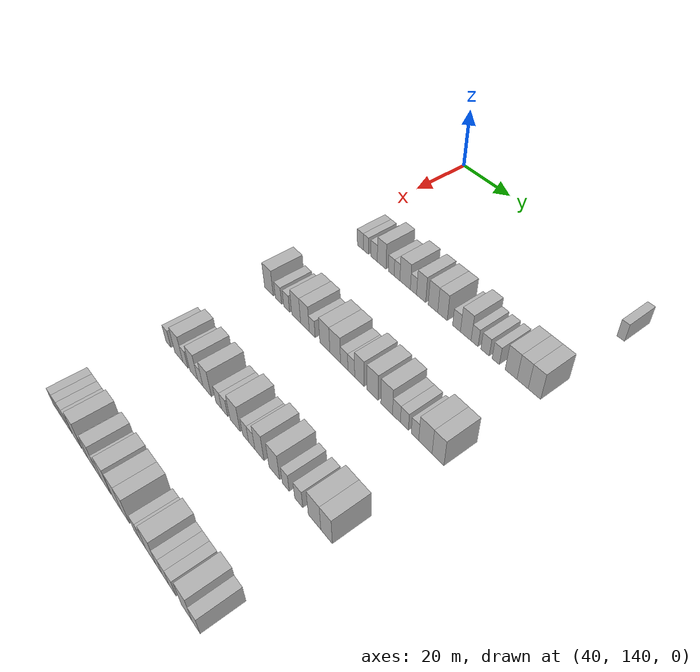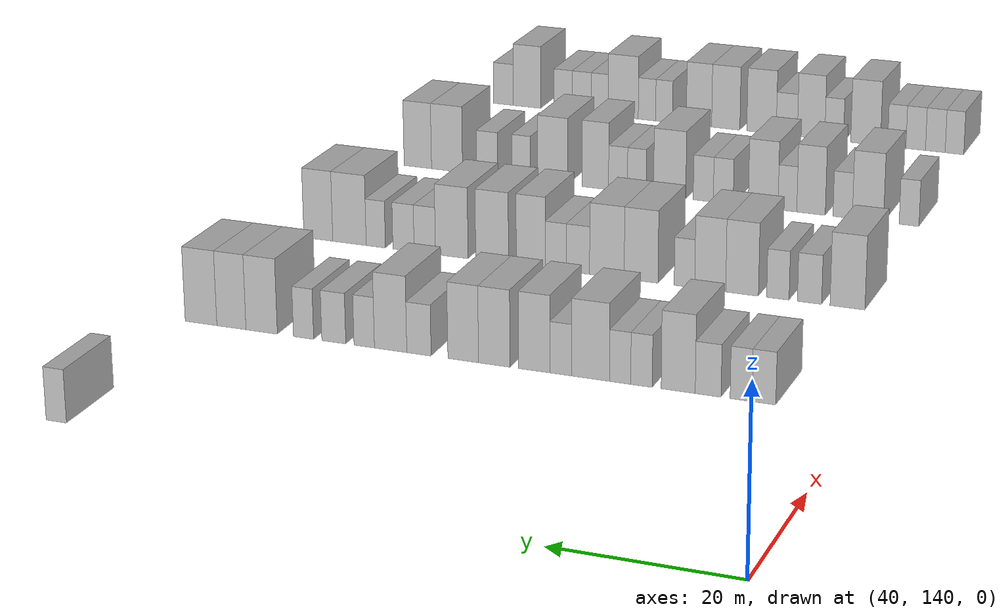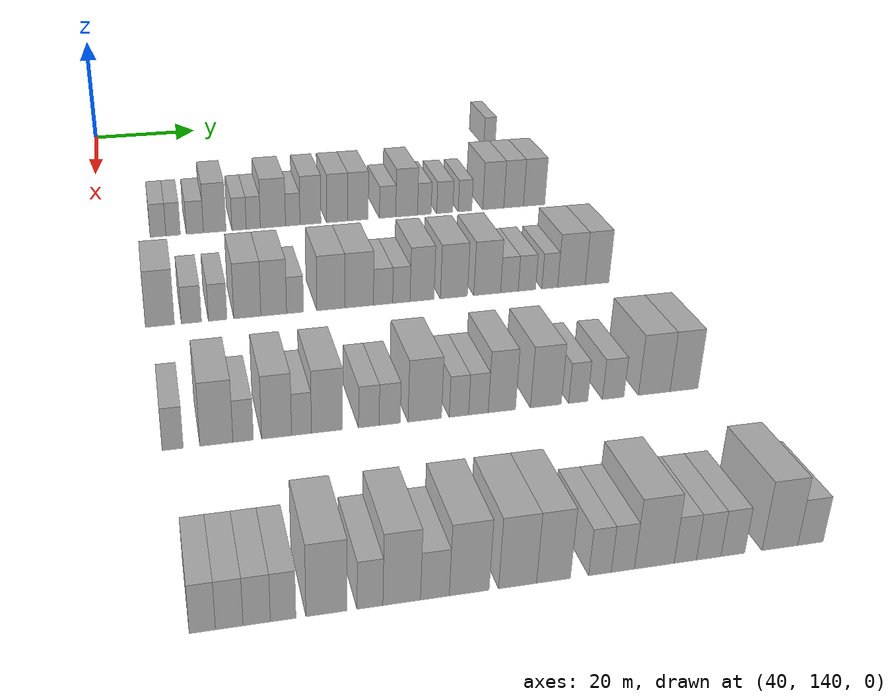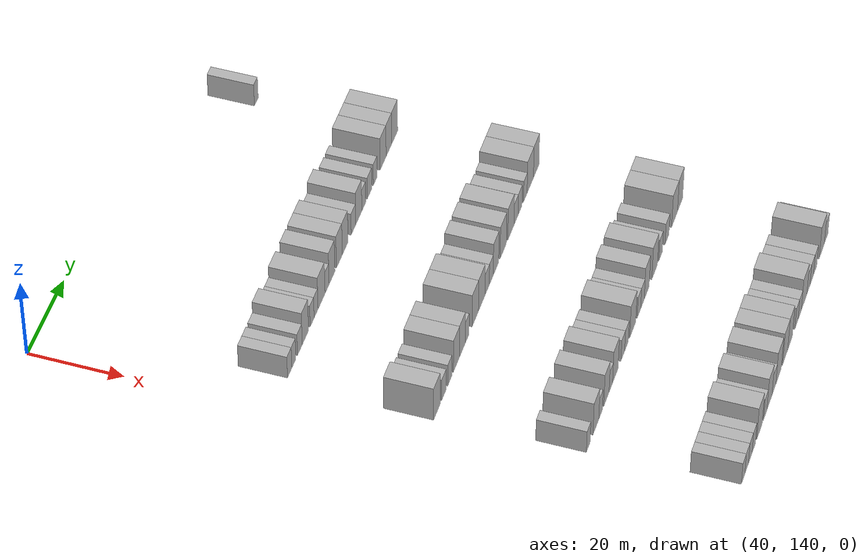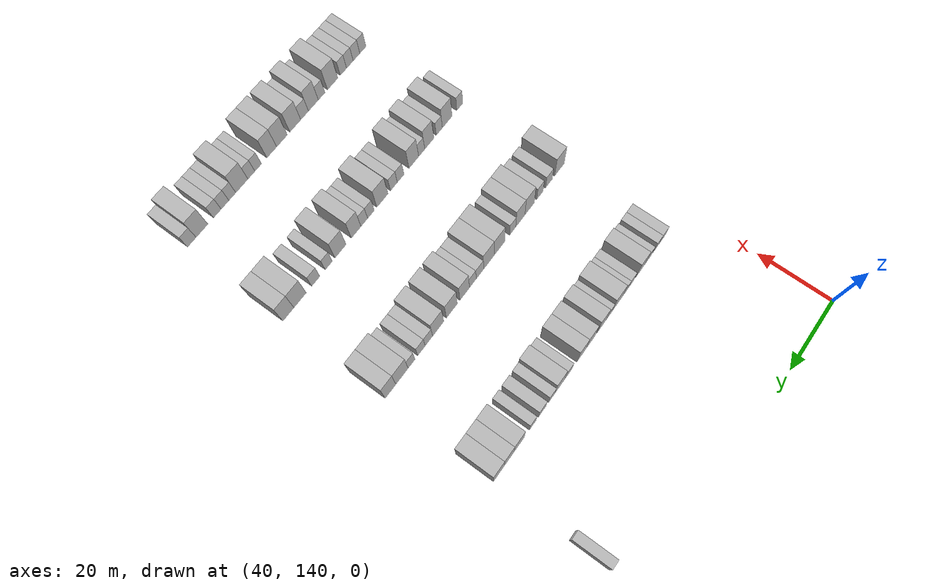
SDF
<sdf version="1.6">
 <world name="default">
  <model name="building_416">
   <static>1</static>
   <pose>55.0000 218.0887 0 0.000000 0.000000 0.000000</pose>
   <link name="link">
    <pose>0 0 3.00 0 0 0</pose>
    <collision name="collision"><geometry><box><size>10.0000 2.4012 6.0000</size></box></geometry></collision>
    <visual name="visual">
     <cast_shadows>0</cast_shadows>
     <geometry><box><size>10.0000 2.4012 6.0000</size></box></geometry>
     <material>
      <script>
       <uri>model://HANNAS_wall/materials/scripts</uri>
       <uri>model://HANNAS_wall/materials/textures</uri>
       <name>vrc/HANNAS_wall</name>
      </script>
     </material>
    </visual>
   </link>
  </model>
  <model name="building_636">
   <static>1</static>
   <pose>85.0000 150.3652 0 0.000000 0.000000 0.000000</pose>
   <link name="link">
    <pose>0 0 3.00 0 0 0</pose>
    <collision name="collision"><geometry><box><size>10.0000 2.6214 6.0000</size></box></geometry></collision>
    <visual name="visual">
     <cast_shadows>0</cast_shadows>
     <geometry><box><size>10.0000 2.6214 6.0000</size></box></geometry>
     <material>
      <script>
       <uri>model://HANNAS_wall/materials/scripts</uri>
       <uri>model://HANNAS_wall/materials/textures</uri>
       <name>vrc/HANNAS_wall</name>
      </script>
     </material>
    </visual>
   </link>
  </model>
  <model name="building_637">
   <static>1</static>
   <pose>85.0000 152.8861 0 0.000000 0.000000 0.000000</pose>
   <link name="link">
    <pose>0 0 3.00 0 0 0</pose>
    <collision name="collision"><geometry><box><size>10.0000 2.4204 6.0000</size></box></geometry></collision>
    <visual name="visual">
     <cast_shadows>0</cast_shadows>
     <geometry><box><size>10.0000 2.4204 6.0000</size></box></geometry>
     <material>
      <script>
       <uri>model://HANNAS_wall/materials/scripts</uri>
       <uri>model://HANNAS_wall/materials/textures</uri>
       <name>vrc/HANNAS_wall</name>
      </script>
     </material>
    </visual>
   </link>
  </model>
  <model name="building_638">
   <static>1</static>
   <pose>85.0000 156.5378 0 0.000000 0.000000 0.000000</pose>
   <link name="link">
    <pose>0 0 3.00 0 0 0</pose>
    <collision name="collision"><geometry><box><size>10.0000 2.8830 6.0000</size></box></geometry></collision>
    <visual name="visual">
     <cast_shadows>0</cast_shadows>
     <geometry><box><size>10.0000 2.8830 6.0000</size></box></geometry>
     <material>
      <script>
       <uri>model://HANNAS_wall/materials/scripts</uri>
       <uri>model://HANNAS_wall/materials/textures</uri>
       <name>vrc/HANNAS_wall</name>
      </script>
     </material>
    </visual>
   </link>
  </model>
  <model name="building_639">
   <static>1</static>
   <pose>85.0000 159.8914 0 0.000000 0.000000 0.000000</pose>
   <link name="link">
    <pose>0 0 4.50 0 0 0</pose>
    <collision name="collision"><geometry><box><size>10.0000 3.8242 9.0000</size></box></geometry></collision>
    <visual name="visual">
     <cast_shadows>0</cast_shadows>
     <geometry><box><size>10.0000 3.8242 9.0000</size></box></geometry>
     <material>
      <script>
       <uri>model://HANNAS_wall/materials/scripts</uri>
       <uri>model://HANNAS_wall/materials/textures</uri>
       <name>vrc/HANNAS_wall</name>
      </script>
     </material>
    </visual>
   </link>
  </model>
  <model name="building_640">
   <static>1</static>
   <pose>85.0000 164.0243 0 0.000000 0.000000 0.000000</pose>
   <link name="link">
    <pose>0 0 3.00 0 0 0</pose>
    <collision name="collision"><geometry><box><size>10.0000 2.4414 6.0000</size></box></geometry></collision>
    <visual name="visual">
     <cast_shadows>0</cast_shadows>
     <geometry><box><size>10.0000 2.4414 6.0000</size></box></geometry>
     <material>
      <script>
       <uri>model://HANNAS_wall/materials/scripts</uri>
       <uri>model://HANNAS_wall/materials/textures</uri>
       <name>vrc/HANNAS_wall</name>
      </script>
     </material>
    </visual>
   </link>
  </model>
  <model name="building_641">
   <static>1</static>
   <pose>85.0000 166.4516 0 0.000000 0.000000 0.000000</pose>
   <link name="link">
    <pose>0 0 3.00 0 0 0</pose>
    <collision name="collision"><geometry><box><size>10.0000 2.4132 6.0000</size></box></geometry></collision>
    <visual name="visual">
     <cast_shadows>0</cast_shadows>
     <geometry><box><size>10.0000 2.4132 6.0000</size></box></geometry>
     <material>
      <script>
       <uri>model://HANNAS_wall/materials/scripts</uri>
       <uri>model://HANNAS_wall/materials/textures</uri>
       <name>vrc/HANNAS_wall</name>
      </script>
     </material>
    </visual>
   </link>
  </model>
  <model name="building_642">
   <static>1</static>
   <pose>85.0000 169.8279 0 0.000000 0.000000 0.000000</pose>
   <link name="link">
    <pose>0 0 4.50 0 0 0</pose>
    <collision name="collision"><geometry><box><size>10.0000 4.3394 9.0000</size></box></geometry></collision>
    <visual name="visual">
     <cast_shadows>0</cast_shadows>
     <geometry><box><size>10.0000 4.3394 9.0000</size></box></geometry>
     <material>
      <script>
       <uri>model://HANNAS_wall/materials/scripts</uri>
       <uri>model://HANNAS_wall/materials/textures</uri>
       <name>vrc/HANNAS_wall</name>
      </script>
     </material>
    </visual>
   </link>
  </model>
  <model name="building_643">
   <static>1</static>
   <pose>85.0000 173.2562 0 0.000000 0.000000 0.000000</pose>
   <link name="link">
    <pose>0 0 3.00 0 0 0</pose>
    <collision name="collision"><geometry><box><size>10.0000 2.5173 6.0000</size></box></geometry></collision>
    <visual name="visual">
     <cast_shadows>0</cast_shadows>
     <geometry><box><size>10.0000 2.5173 6.0000</size></box></geometry>
     <material>
      <script>
       <uri>model://HANNAS_wall/materials/scripts</uri>
       <uri>model://HANNAS_wall/materials/textures</uri>
       <name>vrc/HANNAS_wall</name>
      </script>
     </material>
    </visual>
   </link>
  </model>
  <model name="building_644">
   <static>1</static>
   <pose>85.0000 176.3372 0 0.000000 0.000000 0.000000</pose>
   <link name="link">
    <pose>0 0 4.50 0 0 0</pose>
    <collision name="collision"><geometry><box><size>10.0000 3.6447 9.0000</size></box></geometry></collision>
    <visual name="visual">
     <cast_shadows>0</cast_shadows>
     <geometry><box><size>10.0000 3.6447 9.0000</size></box></geometry>
     <material>
      <script>
       <uri>model://HANNAS_wall/materials/scripts</uri>
       <uri>model://HANNAS_wall/materials/textures</uri>
       <name>vrc/HANNAS_wall</name>
      </script>
     </material>
    </visual>
   </link>
  </model>
  <model name="building_645">
   <static>1</static>
   <pose>85.0000 181.0140 0 0.000000 0.000000 0.000000</pose>
   <link name="link">
    <pose>0 0 4.50 0 0 0</pose>
    <collision name="collision"><geometry><box><size>10.0000 3.7088 9.0000</size></box></geometry></collision>
    <visual name="visual">
     <cast_shadows>0</cast_shadows>
     <geometry><box><size>10.0000 3.7088 9.0000</size></box></geometry>
     <material>
      <script>
       <uri>model://HANNAS_wall/materials/scripts</uri>
       <uri>model://HANNAS_wall/materials/textures</uri>
       <name>vrc/HANNAS_wall</name>
      </script>
     </material>
    </visual>
   </link>
  </model>
  <model name="building_646">
   <static>1</static>
   <pose>85.0000 184.6823 0 0.000000 0.000000 0.000000</pose>
   <link name="link">
    <pose>0 0 4.50 0 0 0</pose>
    <collision name="collision"><geometry><box><size>10.0000 3.6279 9.0000</size></box></geometry></collision>
    <visual name="visual">
     <cast_shadows>0</cast_shadows>
     <geometry><box><size>10.0000 3.6279 9.0000</size></box></geometry>
     <material>
      <script>
       <uri>model://HANNAS_wall/materials/scripts</uri>
       <uri>model://HANNAS_wall/materials/textures</uri>
       <name>vrc/HANNAS_wall</name>
      </script>
     </material>
    </visual>
   </link>
  </model>
  <model name="building_647">
   <static>1</static>
   <pose>85.0000 189.9534 0 0.000000 0.000000 0.000000</pose>
   <link name="link">
    <pose>0 0 3.00 0 0 0</pose>
    <collision name="collision"><geometry><box><size>10.0000 2.9142 6.0000</size></box></geometry></collision>
    <visual name="visual">
     <cast_shadows>0</cast_shadows>
     <geometry><box><size>10.0000 2.9142 6.0000</size></box></geometry>
     <material>
      <script>
       <uri>model://HANNAS_wall/materials/scripts</uri>
       <uri>model://HANNAS_wall/materials/textures</uri>
       <name>vrc/HANNAS_wall</name>
      </script>
     </material>
    </visual>
   </link>
  </model>
  <model name="building_648">
   <static>1</static>
   <pose>85.0000 193.3617 0 0.000000 0.000000 0.000000</pose>
   <link name="link">
    <pose>0 0 4.50 0 0 0</pose>
    <collision name="collision"><geometry><box><size>10.0000 3.9025 9.0000</size></box></geometry></collision>
    <visual name="visual">
     <cast_shadows>0</cast_shadows>
     <geometry><box><size>10.0000 3.9025 9.0000</size></box></geometry>
     <material>
      <script>
       <uri>model://HANNAS_wall/materials/scripts</uri>
       <uri>model://HANNAS_wall/materials/textures</uri>
       <name>vrc/HANNAS_wall</name>
      </script>
     </material>
    </visual>
   </link>
  </model>
  <model name="building_649">
   <static>1</static>
   <pose>85.0000 196.5526 0 0.000000 0.000000 0.000000</pose>
   <link name="link">
    <pose>0 0 3.00 0 0 0</pose>
    <collision name="collision"><geometry><box><size>10.0000 2.4792 6.0000</size></box></geometry></collision>
    <visual name="visual">
     <cast_shadows>0</cast_shadows>
     <geometry><box><size>10.0000 2.4792 6.0000</size></box></geometry>
     <material>
      <script>
       <uri>model://HANNAS_wall/materials/scripts</uri>
       <uri>model://HANNAS_wall/materials/textures</uri>
       <name>vrc/HANNAS_wall</name>
      </script>
     </material>
    </visual>
   </link>
  </model>
  <model name="building_650">
   <static>1</static>
   <pose>85.0000 200.2583 0 0.000000 0.000000 0.000000</pose>
   <link name="link">
    <pose>0 0 3.00 0 0 0</pose>
    <collision name="collision"><geometry><box><size>10.0000 2.9322 6.0000</size></box></geometry></collision>
    <visual name="visual">
     <cast_shadows>0</cast_shadows>
     <geometry><box><size>10.0000 2.9322 6.0000</size></box></geometry>
     <material>
      <script>
       <uri>model://HANNAS_wall/materials/scripts</uri>
       <uri>model://HANNAS_wall/materials/textures</uri>
       <name>vrc/HANNAS_wall</name>
      </script>
     </material>
    </visual>
   </link>
  </model>
  <model name="building_651">
   <static>1</static>
   <pose>85.0000 203.9681 0 0.000000 0.000000 0.000000</pose>
   <link name="link">
    <pose>0 0 3.00 0 0 0</pose>
    <collision name="collision"><geometry><box><size>10.0000 2.4874 6.0000</size></box></geometry></collision>
    <visual name="visual">
     <cast_shadows>0</cast_shadows>
     <geometry><box><size>10.0000 2.4874 6.0000</size></box></geometry>
     <material>
      <script>
       <uri>model://HANNAS_wall/materials/scripts</uri>
       <uri>model://HANNAS_wall/materials/textures</uri>
       <name>vrc/HANNAS_wall</name>
      </script>
     </material>
    </visual>
   </link>
  </model>
  <model name="building_652">
   <static>1</static>
   <pose>85.0000 209.1664 0 0.000000 0.000000 0.000000</pose>
   <link name="link">
    <pose>0 0 4.50 0 0 0</pose>
    <collision name="collision"><geometry><box><size>10.0000 3.9091 9.0000</size></box></geometry></collision>
    <visual name="visual">
     <cast_shadows>0</cast_shadows>
     <geometry><box><size>10.0000 3.9091 9.0000</size></box></geometry>
     <material>
      <script>
       <uri>model://HANNAS_wall/materials/scripts</uri>
       <uri>model://HANNAS_wall/materials/textures</uri>
       <name>vrc/HANNAS_wall</name>
      </script>
     </material>
    </visual>
   </link>
  </model>
  <model name="building_653">
   <static>1</static>
   <pose>85.0000 212.9506 0 0.000000 0.000000 0.000000</pose>
   <link name="link">
    <pose>0 0 4.50 0 0 0</pose>
    <collision name="collision"><geometry><box><size>10.0000 3.6593 9.0000</size></box></geometry></collision>
    <visual name="visual">
     <cast_shadows>0</cast_shadows>
     <geometry><box><size>10.0000 3.6593 9.0000</size></box></geometry>
     <material>
      <script>
       <uri>model://HANNAS_wall/materials/scripts</uri>
       <uri>model://HANNAS_wall/materials/textures</uri>
       <name>vrc/HANNAS_wall</name>
      </script>
     </material>
    </visual>
   </link>
  </model>
  <model name="building_654">
   <static>1</static>
   <pose>85.0000 216.7795 0 0.000000 0.000000 0.000000</pose>
   <link name="link">
    <pose>0 0 4.50 0 0 0</pose>
    <collision name="collision"><geometry><box><size>10.0000 3.9984 9.0000</size></box></geometry></collision>
    <visual name="visual">
     <cast_shadows>0</cast_shadows>
     <geometry><box><size>10.0000 3.9984 9.0000</size></box></geometry>
     <material>
      <script>
       <uri>model://HANNAS_wall/materials/scripts</uri>
       <uri>model://HANNAS_wall/materials/textures</uri>
       <name>vrc/HANNAS_wall</name>
      </script>
     </material>
    </visual>
   </link>
  </model>
  <model name="building_869">
   <static>1</static>
   <pose>115.0000 149.2955 0 0.000000 0.000000 0.000000</pose>
   <link name="link">
    <pose>0 0 4.50 0 0 0</pose>
    <collision name="collision"><geometry><box><size>10.0000 4.1432 9.0000</size></box></geometry></collision>
    <visual name="visual">
     <cast_shadows>0</cast_shadows>
     <geometry><box><size>10.0000 4.1432 9.0000</size></box></geometry>
     <material>
      <script>
       <uri>model://HANNAS_wall/materials/scripts</uri>
       <uri>model://HANNAS_wall/materials/textures</uri>
       <name>vrc/HANNAS_wall</name>
      </script>
     </material>
    </visual>
   </link>
  </model>
  <model name="building_870">
   <static>1</static>
   <pose>115.0000 153.8148 0 0.000000 0.000000 0.000000</pose>
   <link name="link">
    <pose>0 0 3.00 0 0 0</pose>
    <collision name="collision"><geometry><box><size>10.0000 2.8955 6.0000</size></box></geometry></collision>
    <visual name="visual">
     <cast_shadows>0</cast_shadows>
     <geometry><box><size>10.0000 2.8955 6.0000</size></box></geometry>
     <material>
      <script>
       <uri>model://HANNAS_wall/materials/scripts</uri>
       <uri>model://HANNAS_wall/materials/textures</uri>
       <name>vrc/HANNAS_wall</name>
      </script>
     </material>
    </visual>
   </link>
  </model>
  <model name="building_871">
   <static>1</static>
   <pose>115.0000 157.6130 0 0.000000 0.000000 0.000000</pose>
   <link name="link">
    <pose>0 0 3.00 0 0 0</pose>
    <collision name="collision"><geometry><box><size>10.0000 2.7008 6.0000</size></box></geometry></collision>
    <visual name="visual">
     <cast_shadows>0</cast_shadows>
     <geometry><box><size>10.0000 2.7008 6.0000</size></box></geometry>
     <material>
      <script>
       <uri>model://HANNAS_wall/materials/scripts</uri>
       <uri>model://HANNAS_wall/materials/textures</uri>
       <name>vrc/HANNAS_wall</name>
      </script>
     </material>
    </visual>
   </link>
  </model>
  <model name="building_872">
   <static>1</static>
   <pose>115.0000 161.9513 0 0.000000 0.000000 0.000000</pose>
   <link name="link">
    <pose>0 0 4.50 0 0 0</pose>
    <collision name="collision"><geometry><box><size>10.0000 3.9759 9.0000</size></box></geometry></collision>
    <visual name="visual">
     <cast_shadows>0</cast_shadows>
     <geometry><box><size>10.0000 3.9759 9.0000</size></box></geometry>
     <material>
      <script>
       <uri>model://HANNAS_wall/materials/scripts</uri>
       <uri>model://HANNAS_wall/materials/textures</uri>
       <name>vrc/HANNAS_wall</name>
      </script>
     </material>
    </visual>
   </link>
  </model>
  <model name="building_873">
   <static>1</static>
   <pose>115.0000 165.8396 0 0.000000 0.000000 0.000000</pose>
   <link name="link">
    <pose>0 0 4.50 0 0 0</pose>
    <collision name="collision"><geometry><box><size>10.0000 3.8006 9.0000</size></box></geometry></collision>
    <visual name="visual">
     <cast_shadows>0</cast_shadows>
     <geometry><box><size>10.0000 3.8006 9.0000</size></box></geometry>
     <material>
      <script>
       <uri>model://HANNAS_wall/materials/scripts</uri>
       <uri>model://HANNAS_wall/materials/textures</uri>
       <name>vrc/HANNAS_wall</name>
      </script>
     </material>
    </visual>
   </link>
  </model>
  <model name="building_874">
   <static>1</static>
   <pose>115.0000 168.9983 0 0.000000 0.000000 0.000000</pose>
   <link name="link">
    <pose>0 0 3.00 0 0 0</pose>
    <collision name="collision"><geometry><box><size>10.0000 2.5168 6.0000</size></box></geometry></collision>
    <visual name="visual">
     <cast_shadows>0</cast_shadows>
     <geometry><box><size>10.0000 2.5168 6.0000</size></box></geometry>
     <material>
      <script>
       <uri>model://HANNAS_wall/materials/scripts</uri>
       <uri>model://HANNAS_wall/materials/textures</uri>
       <name>vrc/HANNAS_wall</name>
      </script>
     </material>
    </visual>
   </link>
  </model>
  <model name="building_875">
   <static>1</static>
   <pose>115.0000 174.3618 0 0.000000 0.000000 0.000000</pose>
   <link name="link">
    <pose>0 0 4.50 0 0 0</pose>
    <collision name="collision"><geometry><box><size>10.0000 4.2102 9.0000</size></box></geometry></collision>
    <visual name="visual">
     <cast_shadows>0</cast_shadows>
     <geometry><box><size>10.0000 4.2102 9.0000</size></box></geometry>
     <material>
      <script>
       <uri>model://HANNAS_wall/materials/scripts</uri>
       <uri>model://HANNAS_wall/materials/textures</uri>
       <name>vrc/HANNAS_wall</name>
      </script>
     </material>
    </visual>
   </link>
  </model>
  <model name="building_876">
   <static>1</static>
   <pose>115.0000 178.6409 0 0.000000 0.000000 0.000000</pose>
   <link name="link">
    <pose>0 0 4.50 0 0 0</pose>
    <collision name="collision"><geometry><box><size>10.0000 4.3481 9.0000</size></box></geometry></collision>
    <visual name="visual">
     <cast_shadows>0</cast_shadows>
     <geometry><box><size>10.0000 4.3481 9.0000</size></box></geometry>
     <material>
      <script>
       <uri>model://HANNAS_wall/materials/scripts</uri>
       <uri>model://HANNAS_wall/materials/textures</uri>
       <name>vrc/HANNAS_wall</name>
      </script>
     </material>
    </visual>
   </link>
  </model>
  <model name="building_877">
   <static>1</static>
   <pose>115.0000 182.2882 0 0.000000 0.000000 0.000000</pose>
   <link name="link">
    <pose>0 0 3.00 0 0 0</pose>
    <collision name="collision"><geometry><box><size>10.0000 2.9465 6.0000</size></box></geometry></collision>
    <visual name="visual">
     <cast_shadows>0</cast_shadows>
     <geometry><box><size>10.0000 2.9465 6.0000</size></box></geometry>
     <material>
      <script>
       <uri>model://HANNAS_wall/materials/scripts</uri>
       <uri>model://HANNAS_wall/materials/textures</uri>
       <name>vrc/HANNAS_wall</name>
      </script>
     </material>
    </visual>
   </link>
  </model>
  <model name="building_878">
   <static>1</static>
   <pose>115.0000 185.0951 0 0.000000 0.000000 0.000000</pose>
   <link name="link">
    <pose>0 0 3.00 0 0 0</pose>
    <collision name="collision"><geometry><box><size>10.0000 2.6672 6.0000</size></box></geometry></collision>
    <visual name="visual">
     <cast_shadows>0</cast_shadows>
     <geometry><box><size>10.0000 2.6672 6.0000</size></box></geometry>
     <material>
      <script>
       <uri>model://HANNAS_wall/materials/scripts</uri>
       <uri>model://HANNAS_wall/materials/textures</uri>
       <name>vrc/HANNAS_wall</name>
      </script>
     </material>
    </visual>
   </link>
  </model>
  <model name="building_879">
   <static>1</static>
   <pose>115.0000 188.2824 0 0.000000 0.000000 0.000000</pose>
   <link name="link">
    <pose>0 0 4.50 0 0 0</pose>
    <collision name="collision"><geometry><box><size>10.0000 3.7073 9.0000</size></box></geometry></collision>
    <visual name="visual">
     <cast_shadows>0</cast_shadows>
     <geometry><box><size>10.0000 3.7073 9.0000</size></box></geometry>
     <material>
      <script>
       <uri>model://HANNAS_wall/materials/scripts</uri>
       <uri>model://HANNAS_wall/materials/textures</uri>
       <name>vrc/HANNAS_wall</name>
      </script>
     </material>
    </visual>
   </link>
  </model>
  <model name="building_880">
   <static>1</static>
   <pose>115.0000 193.2571 0 0.000000 0.000000 0.000000</pose>
   <link name="link">
    <pose>0 0 4.50 0 0 0</pose>
    <collision name="collision"><geometry><box><size>10.0000 4.2421 9.0000</size></box></geometry></collision>
    <visual name="visual">
     <cast_shadows>0</cast_shadows>
     <geometry><box><size>10.0000 4.2421 9.0000</size></box></geometry>
     <material>
      <script>
       <uri>model://HANNAS_wall/materials/scripts</uri>
       <uri>model://HANNAS_wall/materials/textures</uri>
       <name>vrc/HANNAS_wall</name>
      </script>
     </material>
    </visual>
   </link>
  </model>
  <model name="building_881">
   <static>1</static>
   <pose>115.0000 198.5033 0 0.000000 0.000000 0.000000</pose>
   <link name="link">
    <pose>0 0 4.50 0 0 0</pose>
    <collision name="collision"><geometry><box><size>10.0000 4.2504 9.0000</size></box></geometry></collision>
    <visual name="visual">
     <cast_shadows>0</cast_shadows>
     <geometry><box><size>10.0000 4.2504 9.0000</size></box></geometry>
     <material>
      <script>
       <uri>model://HANNAS_wall/materials/scripts</uri>
       <uri>model://HANNAS_wall/materials/textures</uri>
       <name>vrc/HANNAS_wall</name>
      </script>
     </material>
    </visual>
   </link>
  </model>
  <model name="building_882">
   <static>1</static>
   <pose>115.0000 202.0309 0 0.000000 0.000000 0.000000</pose>
   <link name="link">
    <pose>0 0 3.00 0 0 0</pose>
    <collision name="collision"><geometry><box><size>10.0000 2.8048 6.0000</size></box></geometry></collision>
    <visual name="visual">
     <cast_shadows>0</cast_shadows>
     <geometry><box><size>10.0000 2.8048 6.0000</size></box></geometry>
     <material>
      <script>
       <uri>model://HANNAS_wall/materials/scripts</uri>
       <uri>model://HANNAS_wall/materials/textures</uri>
       <name>vrc/HANNAS_wall</name>
      </script>
     </material>
    </visual>
   </link>
  </model>
  <model name="building_883">
   <static>1</static>
   <pose>115.0000 204.8337 0 0.000000 0.000000 0.000000</pose>
   <link name="link">
    <pose>0 0 3.00 0 0 0</pose>
    <collision name="collision"><geometry><box><size>10.0000 2.8008 6.0000</size></box></geometry></collision>
    <visual name="visual">
     <cast_shadows>0</cast_shadows>
     <geometry><box><size>10.0000 2.8008 6.0000</size></box></geometry>
     <material>
      <script>
       <uri>model://HANNAS_wall/materials/scripts</uri>
       <uri>model://HANNAS_wall/materials/textures</uri>
       <name>vrc/HANNAS_wall</name>
      </script>
     </material>
    </visual>
   </link>
  </model>
  <model name="building_884">
   <static>1</static>
   <pose>115.0000 208.5096 0 0.000000 0.000000 0.000000</pose>
   <link name="link">
    <pose>0 0 3.00 0 0 0</pose>
    <collision name="collision"><geometry><box><size>10.0000 2.5510 6.0000</size></box></geometry></collision>
    <visual name="visual">
     <cast_shadows>0</cast_shadows>
     <geometry><box><size>10.0000 2.5510 6.0000</size></box></geometry>
     <material>
      <script>
       <uri>model://HANNAS_wall/materials/scripts</uri>
       <uri>model://HANNAS_wall/materials/textures</uri>
       <name>vrc/HANNAS_wall</name>
      </script>
     </material>
    </visual>
   </link>
  </model>
  <model name="building_885">
   <static>1</static>
   <pose>115.0000 212.0242 0 0.000000 0.000000 0.000000</pose>
   <link name="link">
    <pose>0 0 4.50 0 0 0</pose>
    <collision name="collision"><geometry><box><size>10.0000 4.4784 9.0000</size></box></geometry></collision>
    <visual name="visual">
     <cast_shadows>0</cast_shadows>
     <geometry><box><size>10.0000 4.4784 9.0000</size></box></geometry>
     <material>
      <script>
       <uri>model://HANNAS_wall/materials/scripts</uri>
       <uri>model://HANNAS_wall/materials/textures</uri>
       <name>vrc/HANNAS_wall</name>
      </script>
     </material>
    </visual>
   </link>
  </model>
  <model name="building_886">
   <static>1</static>
   <pose>115.0000 216.2090 0 0.000000 0.000000 0.000000</pose>
   <link name="link">
    <pose>0 0 4.50 0 0 0</pose>
    <collision name="collision"><geometry><box><size>10.0000 3.8912 9.0000</size></box></geometry></collision>
    <visual name="visual">
     <cast_shadows>0</cast_shadows>
     <geometry><box><size>10.0000 3.8912 9.0000</size></box></geometry>
     <material>
      <script>
       <uri>model://HANNAS_wall/materials/scripts</uri>
       <uri>model://HANNAS_wall/materials/textures</uri>
       <name>vrc/HANNAS_wall</name>
      </script>
     </material>
    </visual>
   </link>
  </model>
  <model name="building_1107">
   <static>1</static>
   <pose>145.0000 149.4284 0 0.000000 0.000000 0.000000</pose>
   <link name="link">
    <pose>0 0 3.00 0 0 0</pose>
    <collision name="collision"><geometry><box><size>10.0000 2.5255 6.0000</size></box></geometry></collision>
    <visual name="visual">
     <cast_shadows>0</cast_shadows>
     <geometry><box><size>10.0000 2.5255 6.0000</size></box></geometry>
     <material>
      <script>
       <uri>model://HANNAS_wall/materials/scripts</uri>
       <uri>model://HANNAS_wall/materials/textures</uri>
       <name>vrc/HANNAS_wall</name>
      </script>
     </material>
    </visual>
   </link>
  </model>
  <model name="building_1108">
   <static>1</static>
   <pose>145.0000 154.6952 0 0.000000 0.000000 0.000000</pose>
   <link name="link">
    <pose>0 0 4.50 0 0 0</pose>
    <collision name="collision"><geometry><box><size>10.0000 4.0081 9.0000</size></box></geometry></collision>
    <visual name="visual">
     <cast_shadows>0</cast_shadows>
     <geometry><box><size>10.0000 4.0081 9.0000</size></box></geometry>
     <material>
      <script>
       <uri>model://HANNAS_wall/materials/scripts</uri>
       <uri>model://HANNAS_wall/materials/textures</uri>
       <name>vrc/HANNAS_wall</name>
      </script>
     </material>
    </visual>
   </link>
  </model>
  <model name="building_1109">
   <static>1</static>
   <pose>145.0000 157.9539 0 0.000000 0.000000 0.000000</pose>
   <link name="link">
    <pose>0 0 3.00 0 0 0</pose>
    <collision name="collision"><geometry><box><size>10.0000 2.5095 6.0000</size></box></geometry></collision>
    <visual name="visual">
     <cast_shadows>0</cast_shadows>
     <geometry><box><size>10.0000 2.5095 6.0000</size></box></geometry>
     <material>
      <script>
       <uri>model://HANNAS_wall/materials/scripts</uri>
       <uri>model://HANNAS_wall/materials/textures</uri>
       <name>vrc/HANNAS_wall</name>
      </script>
     </material>
    </visual>
   </link>
  </model>
  <model name="building_1110">
   <static>1</static>
   <pose>145.0000 162.0639 0 0.000000 0.000000 0.000000</pose>
   <link name="link">
    <pose>0 0 4.50 0 0 0</pose>
    <collision name="collision"><geometry><box><size>10.0000 3.7105 9.0000</size></box></geometry></collision>
    <visual name="visual">
     <cast_shadows>0</cast_shadows>
     <geometry><box><size>10.0000 3.7105 9.0000</size></box></geometry>
     <material>
      <script>
       <uri>model://HANNAS_wall/materials/scripts</uri>
       <uri>model://HANNAS_wall/materials/textures</uri>
       <name>vrc/HANNAS_wall</name>
      </script>
     </material>
    </visual>
   </link>
  </model>
  <model name="building_1111">
   <static>1</static>
   <pose>145.0000 165.1499 0 0.000000 0.000000 0.000000</pose>
   <link name="link">
    <pose>0 0 3.00 0 0 0</pose>
    <collision name="collision"><geometry><box><size>10.0000 2.4614 6.0000</size></box></geometry></collision>
    <visual name="visual">
     <cast_shadows>0</cast_shadows>
     <geometry><box><size>10.0000 2.4614 6.0000</size></box></geometry>
     <material>
      <script>
       <uri>model://HANNAS_wall/materials/scripts</uri>
       <uri>model://HANNAS_wall/materials/textures</uri>
       <name>vrc/HANNAS_wall</name>
      </script>
     </material>
    </visual>
   </link>
  </model>
  <model name="building_1112">
   <static>1</static>
   <pose>145.0000 168.3383 0 0.000000 0.000000 0.000000</pose>
   <link name="link">
    <pose>0 0 4.50 0 0 0</pose>
    <collision name="collision"><geometry><box><size>10.0000 3.9153 9.0000</size></box></geometry></collision>
    <visual name="visual">
     <cast_shadows>0</cast_shadows>
     <geometry><box><size>10.0000 3.9153 9.0000</size></box></geometry>
     <material>
      <script>
       <uri>model://HANNAS_wall/materials/scripts</uri>
       <uri>model://HANNAS_wall/materials/textures</uri>
       <name>vrc/HANNAS_wall</name>
      </script>
     </material>
    </visual>
   </link>
  </model>
  <model name="building_1113">
   <static>1</static>
   <pose>145.0000 173.6154 0 0.000000 0.000000 0.000000</pose>
   <link name="link">
    <pose>0 0 3.00 0 0 0</pose>
    <collision name="collision"><geometry><box><size>10.0000 2.6389 6.0000</size></box></geometry></collision>
    <visual name="visual">
     <cast_shadows>0</cast_shadows>
     <geometry><box><size>10.0000 2.6389 6.0000</size></box></geometry>
     <material>
      <script>
       <uri>model://HANNAS_wall/materials/scripts</uri>
       <uri>model://HANNAS_wall/materials/textures</uri>
       <name>vrc/HANNAS_wall</name>
      </script>
     </material>
    </visual>
   </link>
  </model>
  <model name="building_1114">
   <static>1</static>
   <pose>145.0000 176.2805 0 0.000000 0.000000 0.000000</pose>
   <link name="link">
    <pose>0 0 3.00 0 0 0</pose>
    <collision name="collision"><geometry><box><size>10.0000 2.6915 6.0000</size></box></geometry></collision>
    <visual name="visual">
     <cast_shadows>0</cast_shadows>
     <geometry><box><size>10.0000 2.6915 6.0000</size></box></geometry>
     <material>
      <script>
       <uri>model://HANNAS_wall/materials/scripts</uri>
       <uri>model://HANNAS_wall/materials/textures</uri>
       <name>vrc/HANNAS_wall</name>
      </script>
     </material>
    </visual>
   </link>
  </model>
  <model name="building_1115">
   <static>1</static>
   <pose>145.0000 180.7933 0 0.000000 0.000000 0.000000</pose>
   <link name="link">
    <pose>0 0 4.50 0 0 0</pose>
    <collision name="collision"><geometry><box><size>10.0000 4.3341 9.0000</size></box></geometry></collision>
    <visual name="visual">
     <cast_shadows>0</cast_shadows>
     <geometry><box><size>10.0000 4.3341 9.0000</size></box></geometry>
     <material>
      <script>
       <uri>model://HANNAS_wall/materials/scripts</uri>
       <uri>model://HANNAS_wall/materials/textures</uri>
       <name>vrc/HANNAS_wall</name>
      </script>
     </material>
    </visual>
   </link>
  </model>
  <model name="building_1116">
   <static>1</static>
   <pose>145.0000 185.2317 0 0.000000 0.000000 0.000000</pose>
   <link name="link">
    <pose>0 0 3.00 0 0 0</pose>
    <collision name="collision"><geometry><box><size>10.0000 2.5426 6.0000</size></box></geometry></collision>
    <visual name="visual">
     <cast_shadows>0</cast_shadows>
     <geometry><box><size>10.0000 2.5426 6.0000</size></box></geometry>
     <material>
      <script>
       <uri>model://HANNAS_wall/materials/scripts</uri>
       <uri>model://HANNAS_wall/materials/textures</uri>
       <name>vrc/HANNAS_wall</name>
      </script>
     </material>
    </visual>
   </link>
  </model>
  <model name="building_1117">
   <static>1</static>
   <pose>145.0000 187.7937 0 0.000000 0.000000 0.000000</pose>
   <link name="link">
    <pose>0 0 3.00 0 0 0</pose>
    <collision name="collision"><geometry><box><size>10.0000 2.5814 6.0000</size></box></geometry></collision>
    <visual name="visual">
     <cast_shadows>0</cast_shadows>
     <geometry><box><size>10.0000 2.5814 6.0000</size></box></geometry>
     <material>
      <script>
       <uri>model://HANNAS_wall/materials/scripts</uri>
       <uri>model://HANNAS_wall/materials/textures</uri>
       <name>vrc/HANNAS_wall</name>
      </script>
     </material>
    </visual>
   </link>
  </model>
  <model name="building_1118">
   <static>1</static>
   <pose>145.0000 190.8975 0 0.000000 0.000000 0.000000</pose>
   <link name="link">
    <pose>0 0 4.50 0 0 0</pose>
    <collision name="collision"><geometry><box><size>10.0000 3.6263 9.0000</size></box></geometry></collision>
    <visual name="visual">
     <cast_shadows>0</cast_shadows>
     <geometry><box><size>10.0000 3.6263 9.0000</size></box></geometry>
     <material>
      <script>
       <uri>model://HANNAS_wall/materials/scripts</uri>
       <uri>model://HANNAS_wall/materials/textures</uri>
       <name>vrc/HANNAS_wall</name>
      </script>
     </material>
    </visual>
   </link>
  </model>
  <model name="building_1119">
   <static>1</static>
   <pose>145.0000 196.7833 0 0.000000 0.000000 0.000000</pose>
   <link name="link">
    <pose>0 0 4.50 0 0 0</pose>
    <collision name="collision"><geometry><box><size>10.0000 4.1453 9.0000</size></box></geometry></collision>
    <visual name="visual">
     <cast_shadows>0</cast_shadows>
     <geometry><box><size>10.0000 4.1453 9.0000</size></box></geometry>
     <material>
      <script>
       <uri>model://HANNAS_wall/materials/scripts</uri>
       <uri>model://HANNAS_wall/materials/textures</uri>
       <name>vrc/HANNAS_wall</name>
      </script>
     </material>
    </visual>
   </link>
  </model>
  <model name="building_1120">
   <static>1</static>
   <pose>145.0000 201.1593 0 0.000000 0.000000 0.000000</pose>
   <link name="link">
    <pose>0 0 3.00 0 0 0</pose>
    <collision name="collision"><geometry><box><size>10.0000 2.6068 6.0000</size></box></geometry></collision>
    <visual name="visual">
     <cast_shadows>0</cast_shadows>
     <geometry><box><size>10.0000 2.6068 6.0000</size></box></geometry>
     <material>
      <script>
       <uri>model://HANNAS_wall/materials/scripts</uri>
       <uri>model://HANNAS_wall/materials/textures</uri>
       <name>vrc/HANNAS_wall</name>
      </script>
     </material>
    </visual>
   </link>
  </model>
  <model name="building_1121">
   <static>1</static>
   <pose>145.0000 205.9482 0 0.000000 0.000000 0.000000</pose>
   <link name="link">
    <pose>0 0 3.00 0 0 0</pose>
    <collision name="collision"><geometry><box><size>10.0000 2.9710 6.0000</size></box></geometry></collision>
    <visual name="visual">
     <cast_shadows>0</cast_shadows>
     <geometry><box><size>10.0000 2.9710 6.0000</size></box></geometry>
     <material>
      <script>
       <uri>model://HANNAS_wall/materials/scripts</uri>
       <uri>model://HANNAS_wall/materials/textures</uri>
       <name>vrc/HANNAS_wall</name>
      </script>
     </material>
    </visual>
   </link>
  </model>
  <model name="building_1122">
   <static>1</static>
   <pose>145.0000 211.6418 0 0.000000 0.000000 0.000000</pose>
   <link name="link">
    <pose>0 0 4.50 0 0 0</pose>
    <collision name="collision"><geometry><box><size>10.0000 4.4162 9.0000</size></box></geometry></collision>
    <visual name="visual">
     <cast_shadows>0</cast_shadows>
     <geometry><box><size>10.0000 4.4162 9.0000</size></box></geometry>
     <material>
      <script>
       <uri>model://HANNAS_wall/materials/scripts</uri>
       <uri>model://HANNAS_wall/materials/textures</uri>
       <name>vrc/HANNAS_wall</name>
      </script>
     </material>
    </visual>
   </link>
  </model>
  <model name="building_1123">
   <static>1</static>
   <pose>145.0000 215.8121 0 0.000000 0.000000 0.000000</pose>
   <link name="link">
    <pose>0 0 4.50 0 0 0</pose>
    <collision name="collision"><geometry><box><size>10.0000 3.9244 9.0000</size></box></geometry></collision>
    <visual name="visual">
     <cast_shadows>0</cast_shadows>
     <geometry><box><size>10.0000 3.9244 9.0000</size></box></geometry>
     <material>
      <script>
       <uri>model://HANNAS_wall/materials/scripts</uri>
       <uri>model://HANNAS_wall/materials/textures</uri>
       <name>vrc/HANNAS_wall</name>
      </script>
     </material>
    </visual>
   </link>
  </model>
  <model name="building_1337">
   <static>1</static>
   <pose>175.0000 150.5876 0 0.000000 0.000000 0.000000</pose>
   <link name="link">
    <pose>0 0 3.00 0 0 0</pose>
    <collision name="collision"><geometry><box><size>10.0000 2.5349 6.0000</size></box></geometry></collision>
    <visual name="visual">
     <cast_shadows>0</cast_shadows>
     <geometry><box><size>10.0000 2.5349 6.0000</size></box></geometry>
     <material>
      <script>
       <uri>model://HANNAS_wall/materials/scripts</uri>
       <uri>model://HANNAS_wall/materials/textures</uri>
       <name>vrc/HANNAS_wall</name>
      </script>
     </material>
    </visual>
   </link>
  </model>
  <model name="building_1338">
   <static>1</static>
   <pose>175.0000 153.2038 0 0.000000 0.000000 0.000000</pose>
   <link name="link">
    <pose>0 0 3.00 0 0 0</pose>
    <collision name="collision"><geometry><box><size>10.0000 2.6975 6.0000</size></box></geometry></collision>
    <visual name="visual">
     <cast_shadows>0</cast_shadows>
     <geometry><box><size>10.0000 2.6975 6.0000</size></box></geometry>
     <material>
      <script>
       <uri>model://HANNAS_wall/materials/scripts</uri>
       <uri>model://HANNAS_wall/materials/textures</uri>
       <name>vrc/HANNAS_wall</name>
      </script>
     </material>
    </visual>
   </link>
  </model>
  <model name="building_1339">
   <static>1</static>
   <pose>175.0000 155.8983 0 0.000000 0.000000 0.000000</pose>
   <link name="link">
    <pose>0 0 3.00 0 0 0</pose>
    <collision name="collision"><geometry><box><size>10.0000 2.6916 6.0000</size></box></geometry></collision>
    <visual name="visual">
     <cast_shadows>0</cast_shadows>
     <geometry><box><size>10.0000 2.6916 6.0000</size></box></geometry>
     <material>
      <script>
       <uri>model://HANNAS_wall/materials/scripts</uri>
       <uri>model://HANNAS_wall/materials/textures</uri>
       <name>vrc/HANNAS_wall</name>
      </script>
     </material>
    </visual>
   </link>
  </model>
  <model name="building_1340">
   <static>1</static>
   <pose>175.0000 158.5088 0 0.000000 0.000000 0.000000</pose>
   <link name="link">
    <pose>0 0 3.00 0 0 0</pose>
    <collision name="collision"><geometry><box><size>10.0000 2.5294 6.0000</size></box></geometry></collision>
    <visual name="visual">
     <cast_shadows>0</cast_shadows>
     <geometry><box><size>10.0000 2.5294 6.0000</size></box></geometry>
     <material>
      <script>
       <uri>model://HANNAS_wall/materials/scripts</uri>
       <uri>model://HANNAS_wall/materials/textures</uri>
       <name>vrc/HANNAS_wall</name>
      </script>
     </material>
    </visual>
   </link>
  </model>
  <model name="building_1341">
   <static>1</static>
   <pose>175.0000 162.8446 0 0.000000 0.000000 0.000000</pose>
   <link name="link">
    <pose>0 0 4.50 0 0 0</pose>
    <collision name="collision"><geometry><box><size>10.0000 4.1423 9.0000</size></box></geometry></collision>
    <visual name="visual">
     <cast_shadows>0</cast_shadows>
     <geometry><box><size>10.0000 4.1423 9.0000</size></box></geometry>
     <material>
      <script>
       <uri>model://HANNAS_wall/materials/scripts</uri>
       <uri>model://HANNAS_wall/materials/textures</uri>
       <name>vrc/HANNAS_wall</name>
      </script>
     </material>
    </visual>
   </link>
  </model>
  <model name="building_1342">
   <static>1</static>
   <pose>175.0000 167.2312 0 0.000000 0.000000 0.000000</pose>
   <link name="link">
    <pose>0 0 3.00 0 0 0</pose>
    <collision name="collision"><geometry><box><size>10.0000 2.6311 6.0000</size></box></geometry></collision>
    <visual name="visual">
     <cast_shadows>0</cast_shadows>
     <geometry><box><size>10.0000 2.6311 6.0000</size></box></geometry>
     <material>
      <script>
       <uri>model://HANNAS_wall/materials/scripts</uri>
       <uri>model://HANNAS_wall/materials/textures</uri>
       <name>vrc/HANNAS_wall</name>
      </script>
     </material>
    </visual>
   </link>
  </model>
  <model name="building_1343">
   <static>1</static>
   <pose>175.0000 170.4815 0 0.000000 0.000000 0.000000</pose>
   <link name="link">
    <pose>0 0 4.50 0 0 0</pose>
    <collision name="collision"><geometry><box><size>10.0000 3.8695 9.0000</size></box></geometry></collision>
    <visual name="visual">
     <cast_shadows>0</cast_shadows>
     <geometry><box><size>10.0000 3.8695 9.0000</size></box></geometry>
     <material>
      <script>
       <uri>model://HANNAS_wall/materials/scripts</uri>
       <uri>model://HANNAS_wall/materials/textures</uri>
       <name>vrc/HANNAS_wall</name>
      </script>
     </material>
    </visual>
   </link>
  </model>
  <model name="building_1344">
   <static>1</static>
   <pose>175.0000 173.9149 0 0.000000 0.000000 0.000000</pose>
   <link name="link">
    <pose>0 0 3.00 0 0 0</pose>
    <collision name="collision"><geometry><box><size>10.0000 2.9973 6.0000</size></box></geometry></collision>
    <visual name="visual">
     <cast_shadows>0</cast_shadows>
     <geometry><box><size>10.0000 2.9973 6.0000</size></box></geometry>
     <material>
      <script>
       <uri>model://HANNAS_wall/materials/scripts</uri>
       <uri>model://HANNAS_wall/materials/textures</uri>
       <name>vrc/HANNAS_wall</name>
      </script>
     </material>
    </visual>
   </link>
  </model>
  <model name="building_1345">
   <static>1</static>
   <pose>175.0000 177.5120 0 0.000000 0.000000 0.000000</pose>
   <link name="link">
    <pose>0 0 4.50 0 0 0</pose>
    <collision name="collision"><geometry><box><size>10.0000 4.1969 9.0000</size></box></geometry></collision>
    <visual name="visual">
     <cast_shadows>0</cast_shadows>
     <geometry><box><size>10.0000 4.1969 9.0000</size></box></geometry>
     <material>
      <script>
       <uri>model://HANNAS_wall/materials/scripts</uri>
       <uri>model://HANNAS_wall/materials/textures</uri>
       <name>vrc/HANNAS_wall</name>
      </script>
     </material>
    </visual>
   </link>
  </model>
  <model name="building_1346">
   <static>1</static>
   <pose>175.0000 182.6417 0 0.000000 0.000000 0.000000</pose>
   <link name="link">
    <pose>0 0 4.50 0 0 0</pose>
    <collision name="collision"><geometry><box><size>10.0000 4.0625 9.0000</size></box></geometry></collision>
    <visual name="visual">
     <cast_shadows>0</cast_shadows>
     <geometry><box><size>10.0000 4.0625 9.0000</size></box></geometry>
     <material>
      <script>
       <uri>model://HANNAS_wall/materials/scripts</uri>
       <uri>model://HANNAS_wall/materials/textures</uri>
       <name>vrc/HANNAS_wall</name>
      </script>
     </material>
    </visual>
   </link>
  </model>
  <model name="building_1347">
   <static>1</static>
   <pose>175.0000 186.5031 0 0.000000 0.000000 0.000000</pose>
   <link name="link">
    <pose>0 0 4.50 0 0 0</pose>
    <collision name="collision"><geometry><box><size>10.0000 3.6605 9.0000</size></box></geometry></collision>
    <visual name="visual">
     <cast_shadows>0</cast_shadows>
     <geometry><box><size>10.0000 3.6605 9.0000</size></box></geometry>
     <material>
      <script>
       <uri>model://HANNAS_wall/materials/scripts</uri>
       <uri>model://HANNAS_wall/materials/textures</uri>
       <name>vrc/HANNAS_wall</name>
      </script>
     </material>
    </visual>
   </link>
  </model>
  <model name="building_1348">
   <static>1</static>
   <pose>175.0000 191.5712 0 0.000000 0.000000 0.000000</pose>
   <link name="link">
    <pose>0 0 3.00 0 0 0</pose>
    <collision name="collision"><geometry><box><size>10.0000 2.4757 6.0000</size></box></geometry></collision>
    <visual name="visual">
     <cast_shadows>0</cast_shadows>
     <geometry><box><size>10.0000 2.4757 6.0000</size></box></geometry>
     <material>
      <script>
       <uri>model://HANNAS_wall/materials/scripts</uri>
       <uri>model://HANNAS_wall/materials/textures</uri>
       <name>vrc/HANNAS_wall</name>
      </script>
     </material>
    </visual>
   </link>
  </model>
  <model name="building_1349">
   <static>1</static>
   <pose>175.0000 194.0894 0 0.000000 0.000000 0.000000</pose>
   <link name="link">
    <pose>0 0 3.00 0 0 0</pose>
    <collision name="collision"><geometry><box><size>10.0000 2.5606 6.0000</size></box></geometry></collision>
    <visual name="visual">
     <cast_shadows>0</cast_shadows>
     <geometry><box><size>10.0000 2.5606 6.0000</size></box></geometry>
     <material>
      <script>
       <uri>model://HANNAS_wall/materials/scripts</uri>
       <uri>model://HANNAS_wall/materials/textures</uri>
       <name>vrc/HANNAS_wall</name>
      </script>
     </material>
    </visual>
   </link>
  </model>
  <model name="building_1350">
   <static>1</static>
   <pose>175.0000 197.5945 0 0.000000 0.000000 0.000000</pose>
   <link name="link">
    <pose>0 0 4.50 0 0 0</pose>
    <collision name="collision"><geometry><box><size>10.0000 4.4497 9.0000</size></box></geometry></collision>
    <visual name="visual">
     <cast_shadows>0</cast_shadows>
     <geometry><box><size>10.0000 4.4497 9.0000</size></box></geometry>
     <material>
      <script>
       <uri>model://HANNAS_wall/materials/scripts</uri>
       <uri>model://HANNAS_wall/materials/textures</uri>
       <name>vrc/HANNAS_wall</name>
      </script>
     </material>
    </visual>
   </link>
  </model>
  <model name="building_1351">
   <static>1</static>
   <pose>175.0000 201.0753 0 0.000000 0.000000 0.000000</pose>
   <link name="link">
    <pose>0 0 3.00 0 0 0</pose>
    <collision name="collision"><geometry><box><size>10.0000 2.5120 6.0000</size></box></geometry></collision>
    <visual name="visual">
     <cast_shadows>0</cast_shadows>
     <geometry><box><size>10.0000 2.5120 6.0000</size></box></geometry>
     <material>
      <script>
       <uri>model://HANNAS_wall/materials/scripts</uri>
       <uri>model://HANNAS_wall/materials/textures</uri>
       <name>vrc/HANNAS_wall</name>
      </script>
     </material>
    </visual>
   </link>
  </model>
  <model name="building_1352">
   <static>1</static>
   <pose>175.0000 203.7204 0 0.000000 0.000000 0.000000</pose>
   <link name="link">
    <pose>0 0 3.00 0 0 0</pose>
    <collision name="collision"><geometry><box><size>10.0000 2.7781 6.0000</size></box></geometry></collision>
    <visual name="visual">
     <cast_shadows>0</cast_shadows>
     <geometry><box><size>10.0000 2.7781 6.0000</size></box></geometry>
     <material>
      <script>
       <uri>model://HANNAS_wall/materials/scripts</uri>
       <uri>model://HANNAS_wall/materials/textures</uri>
       <name>vrc/HANNAS_wall</name>
      </script>
     </material>
    </visual>
   </link>
  </model>
  <model name="building_1353">
   <static>1</static>
   <pose>175.0000 206.4844 0 0.000000 0.000000 0.000000</pose>
   <link name="link">
    <pose>0 0 3.00 0 0 0</pose>
    <collision name="collision"><geometry><box><size>10.0000 2.7499 6.0000</size></box></geometry></collision>
    <visual name="visual">
     <cast_shadows>0</cast_shadows>
     <geometry><box><size>10.0000 2.7499 6.0000</size></box></geometry>
     <material>
      <script>
       <uri>model://HANNAS_wall/materials/scripts</uri>
       <uri>model://HANNAS_wall/materials/textures</uri>
       <name>vrc/HANNAS_wall</name>
      </script>
     </material>
    </visual>
   </link>
  </model>
  <model name="building_1354">
   <static>1</static>
   <pose>175.0000 211.9397 0 0.000000 0.000000 0.000000</pose>
   <link name="link">
    <pose>0 0 4.50 0 0 0</pose>
    <collision name="collision"><geometry><box><size>10.0000 4.1607 9.0000</size></box></geometry></collision>
    <visual name="visual">
     <cast_shadows>0</cast_shadows>
     <geometry><box><size>10.0000 4.1607 9.0000</size></box></geometry>
     <material>
      <script>
       <uri>model://HANNAS_wall/materials/scripts</uri>
       <uri>model://HANNAS_wall/materials/textures</uri>
       <name>vrc/HANNAS_wall</name>
      </script>
     </material>
    </visual>
   </link>
  </model>
  <model name="building_1355">
   <static>1</static>
   <pose>175.0000 215.5177 0 0.000000 0.000000 0.000000</pose>
   <link name="link">
    <pose>0 0 3.00 0 0 0</pose>
    <collision name="collision"><geometry><box><size>10.0000 2.9952 6.0000</size></box></geometry></collision>
    <visual name="visual">
     <cast_shadows>0</cast_shadows>
     <geometry><box><size>10.0000 2.9952 6.0000</size></box></geometry>
     <material>
      <script>
       <uri>model://HANNAS_wall/materials/scripts</uri>
       <uri>model://HANNAS_wall/materials/textures</uri>
       <name>vrc/HANNAS_wall</name>
      </script>
     </material>
    </visual>
   </link>
  </model>
 </world>
</sdf>
